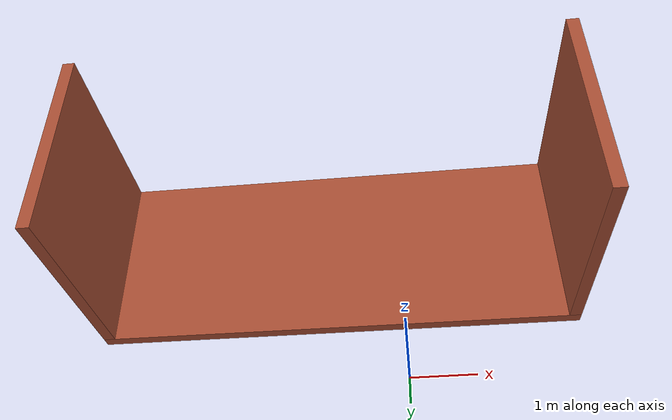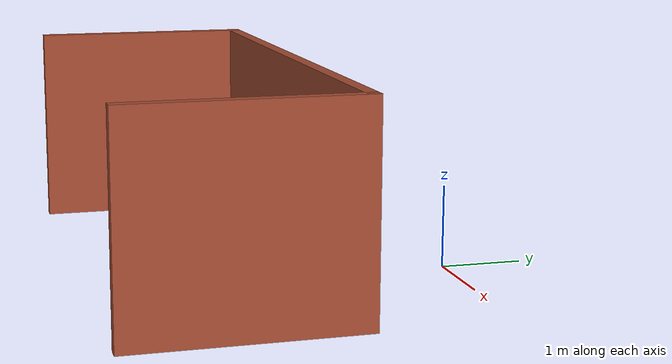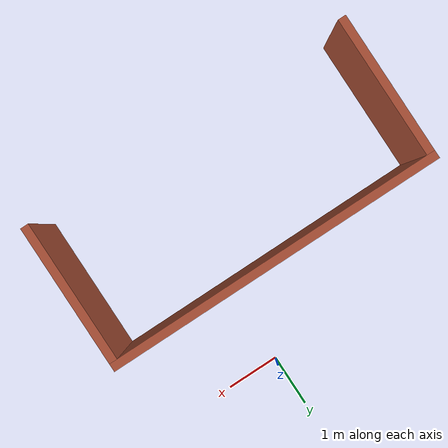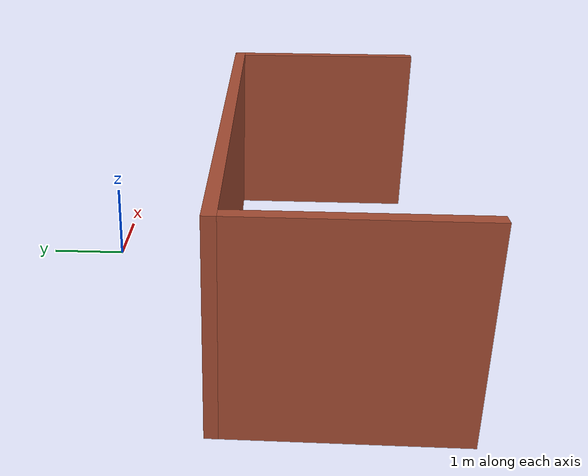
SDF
<?xml version='1.0'?>
<sdf version='1.7'>
  <model name='MyBuilding'>
    <pose>-0.93 -2.1575 0 0 -0 0</pose>
    <link name='Wall_0'>
      <collision name='Wall_0_Collision'>
        <geometry>
          <box>
            <size>6.25 0.15 2.5</size>
          </box>
        </geometry>
        <pose>0 0 1.25 0 -0 0</pose>
      </collision>
      <visual name='Wall_0_Visual'>
        <pose>0 0 1.25 0 -0 0</pose>
        <geometry>
          <box>
            <size>6.25 0.15 2.5</size>
          </box>
        </geometry>
        <material>
          <script>
            <uri>file://media/materials/scripts/gazebo.material</uri>
            <name>Gazebo/Bricks</name>
          </script>
          <ambient>1 1 1 1</ambient>
        </material>
        <meta>
          <layer>0</layer>
        </meta>
      </visual>
      <pose>0 0.5175 0 0 -0 0</pose>
    </link>
    <link name='Wall_1'>
      <collision name='Wall_1_Collision'>
        <geometry>
          <box>
            <size>2.75 0.15 2.5</size>
          </box>
        </geometry>
        <pose>0 0 1.25 0 -0 0</pose>
      </collision>
      <visual name='Wall_1_Visual'>
        <pose>0 0 1.25 0 -0 0</pose>
        <geometry>
          <box>
            <size>2.75 0.15 2.5</size>
          </box>
        </geometry>
        <material>
          <script>
            <uri>file://media/materials/scripts/gazebo.material</uri>
            <name>Gazebo/Bricks</name>
          </script>
          <ambient>1 1 1 1</ambient>
        </material>
        <meta>
          <layer>0</layer>
        </meta>
      </visual>
      <pose>3.05 -0.7825 0 0 -0 -1.5708</pose>
    </link>
    <link name='Wall_4'>
      <collision name='Wall_4_Collision'>
        <geometry>
          <box>
            <size>2.75 0.15 2.5</size>
          </box>
        </geometry>
        <pose>0 0 1.25 0 -0 0</pose>
      </collision>
      <visual name='Wall_4_Visual'>
        <pose>0 0 1.25 0 -0 0</pose>
        <geometry>
          <box>
            <size>2.75 0.15 2.5</size>
          </box>
        </geometry>
        <material>
          <script>
            <uri>file://media/materials/scripts/gazebo.material</uri>
            <name>Gazebo/Bricks</name>
          </script>
          <ambient>1 1 1 1</ambient>
        </material>
        <meta>
          <layer>0</layer>
        </meta>
      </visual>
      <pose>-3.05 -0.7825 0 0 -0 -1.5708</pose>
    </link>
    <static>1</static>
  </model>
</sdf>
